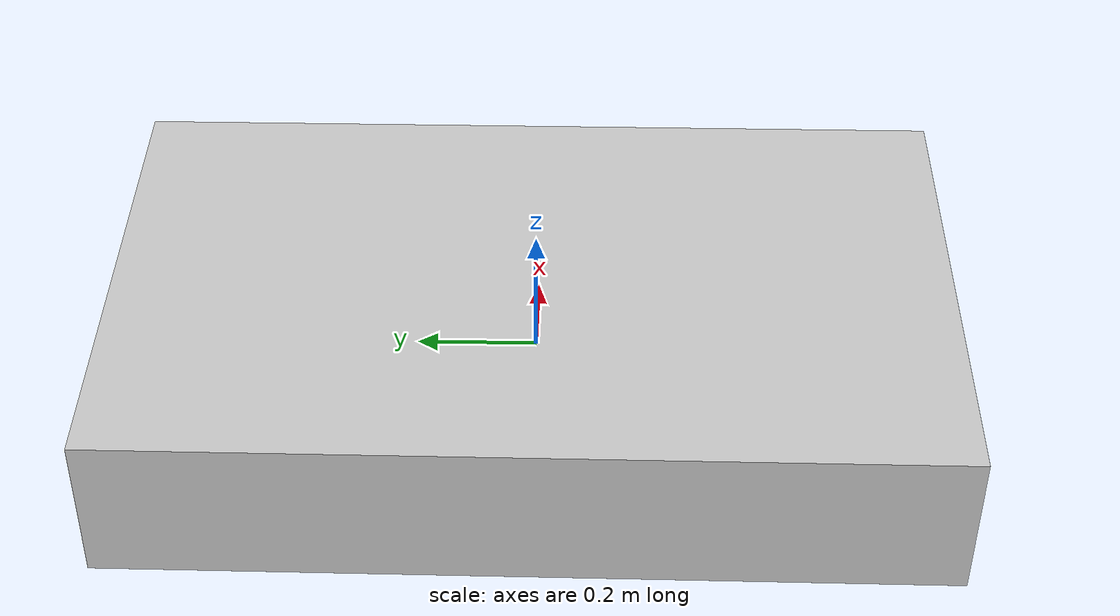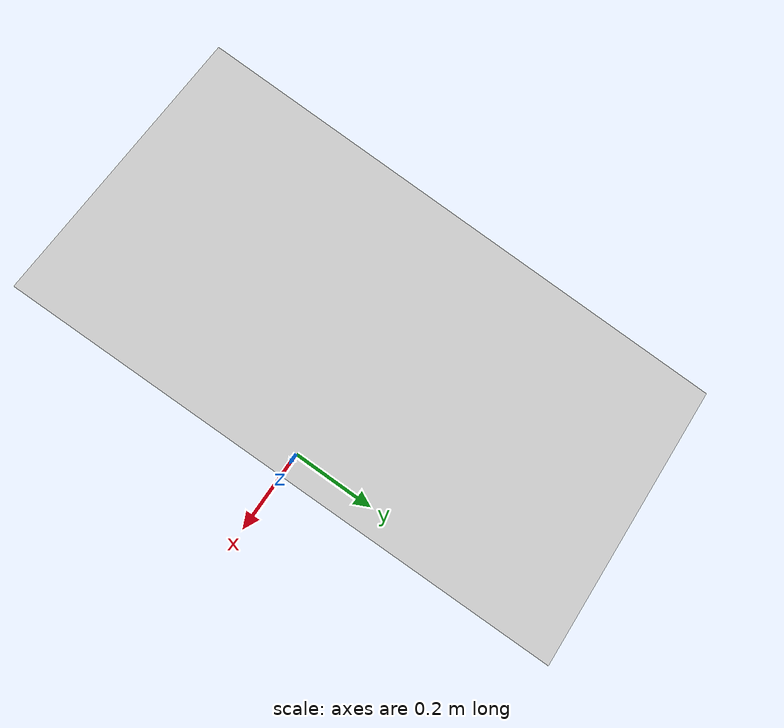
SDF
<?xml version='1.0'?>
<sdf version='1.6'>
  <model name='terrain-ramps_1'>
    <static>true</static>
    <link name='base_link'>
      <pose frame=''>0 0 0 0 -0 0</pose>
      <inertial>
        <pose frame=''>-0.26667 0 0.15556 0 -0 0</pose>
        <mass>216</mass>
        <inertia>
          <ixx>8.4533</ixx>
          <ixy>-1.2975e-16</ixy>
          <ixz>-1.04</ixz>
          <iyy>8.2133</iyy>
          <iyz>-1.6958e-16</iyz>
          <izz>12.72</izz>
        </inertia>
      </inertial>
      <collision name='base_link_collision'>
        <pose frame=''>0 0 0 0 -0 0</pose>
        <geometry>
          <mesh>
            <scale>1 1 1</scale>
            <uri>model://terrain-ramps_1/meshes/base_link.STL</uri>
          </mesh>
        </geometry>
        <surface>
          <contact>
            <collide_bitmask>65535</collide_bitmask>
            <ode/>
          </contact>
          <friction>
            <ode>
              <mu>2</mu>
              <mu2>2</mu2>
            </ode>
            <torsional>
              <ode/>
            </torsional>
          </friction>
          <bounce/>
        </surface>
      </collision>
      <visual name='base_link_visual'>
        <pose frame=''>0 0 0 0 -0 0</pose>
        <geometry>
          <mesh>
            <scale>1 1 1</scale>
            <uri>model://terrain-ramps_1/meshes/base_link.dae</uri>
          </mesh>
        </geometry>
      </visual>
    </link>
  </model>
</sdf>
